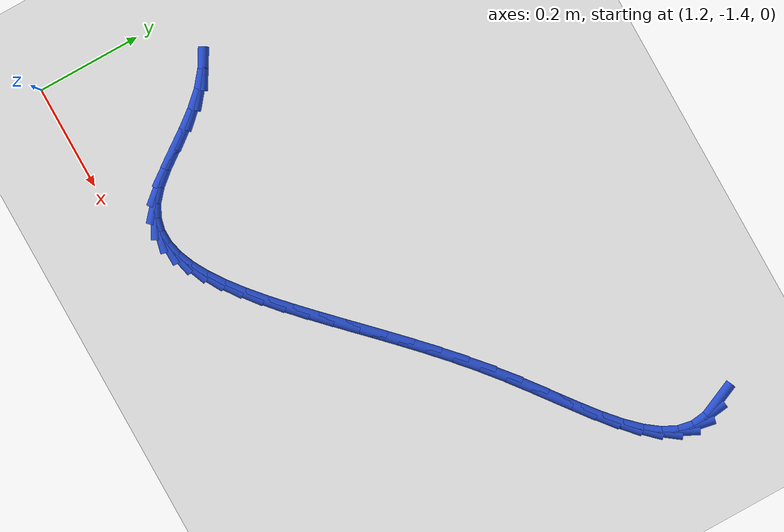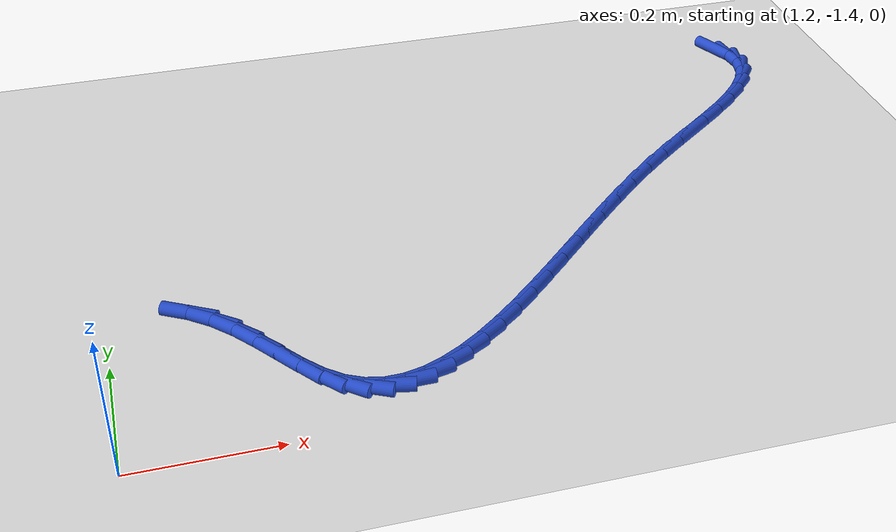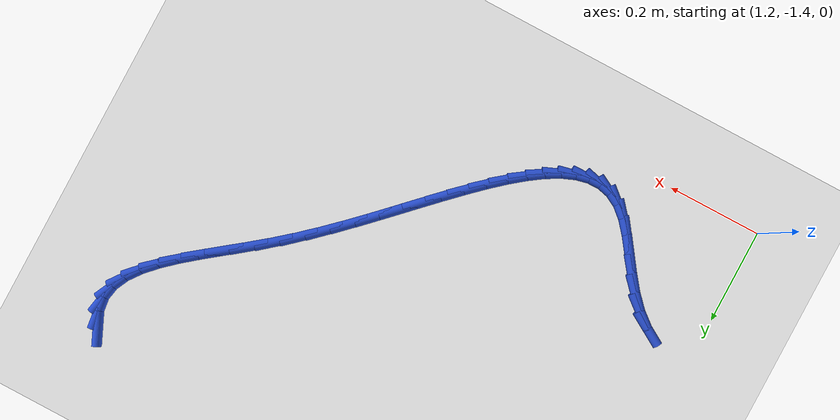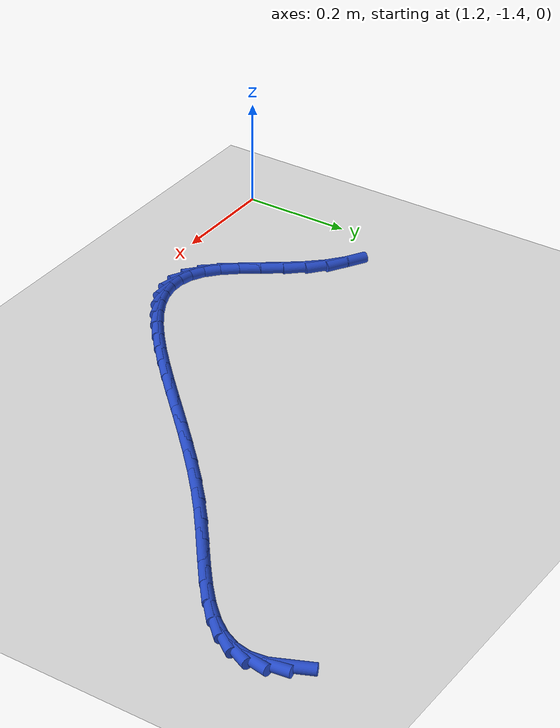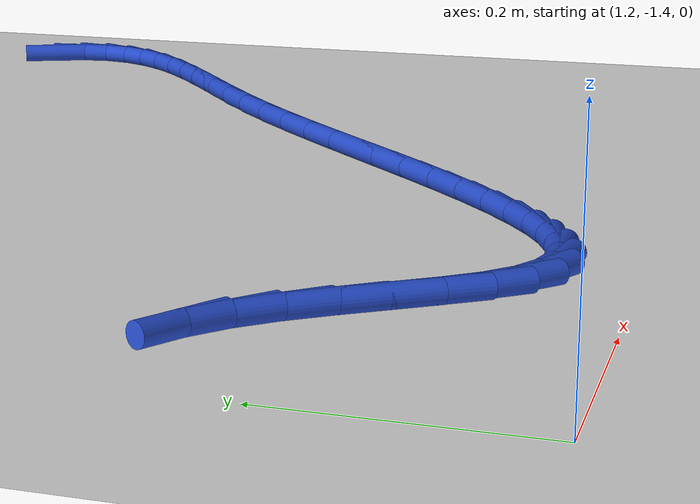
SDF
<sdf version="1.6">
 <world name="default">
  <model name="ground_plane">
   <static>1</static>
   <link name="link">
    <collision name="collision">
     <geometry><plane><normal>0 0 1</normal><size>100 100</size></plane></geometry>
     <surface><friction><ode><mu>100</mu><mu2>50</mu2></ode></friction></surface>
    </collision>
    <visual name="visual">
     <cast_shadows>0</cast_shadows>
     <geometry><plane><normal>0 0 1</normal><size>100 100</size></plane></geometry>
     <material>
      <script><uri>file://media/materials/scripts/gazebo.material</uri><name>Gazebo/WhiteGlow</name></script>
     </material>
    </visual>
   </link>
  </model>
  <model name="line">
   <link name="link_131">
    <pose>2.2953136113420305 -0.5986499298383368 0.01 0 1.57 -1.150808809760439</pose>
    <collision name="collision">
     <geometry><cylinder><radius>0.01</radius><length>0.08</length></cylinder></geometry>
    </collision>
    <visual name="visual">
     <material>
      <script><name>Gazebo/Blue</name><uri>file://media/materials/scripts/gazebo.material</uri></script>
     </material>
     <geometry><cylinder><radius>0.01</radius><length>0.08</length></cylinder></geometry>
    </visual>
   </link>
   <link name="link_132">
    <pose>2.309005720112622 -0.6293113933739817 0.01 0 1.57 -1.4461810255342478</pose>
    <collision name="collision">
     <geometry><cylinder><radius>0.01</radius><length>0.08</length></cylinder></geometry>
    </collision>
    <visual name="visual">
     <material>
      <script><name>Gazebo/Blue</name><uri>file://media/materials/scripts/gazebo.material</uri></script>
     </material>
     <geometry><cylinder><radius>0.01</radius><length>0.08</length></cylinder></geometry>
    </visual>
   </link>
   <link name="link_133">
    <pose>2.312705144816214 -0.6588443270488877 0.01 0 1.57 1.3808563776938212</pose>
    <collision name="collision">
     <geometry><cylinder><radius>0.01</radius><length>0.08</length></cylinder></geometry>
    </collision>
    <visual name="visual">
     <material>
      <script><name>Gazebo/Blue</name><uri>file://media/materials/scripts/gazebo.material</uri></script>
     </material>
     <geometry><cylinder><radius>0.01</radius><length>0.08</length></cylinder></geometry>
    </visual>
   </link>
   <link name="link_134">
    <pose>2.307193473479112 -0.687512490512152 0.01 0 1.57 1.118571027401375</pose>
    <collision name="collision">
     <geometry><cylinder><radius>0.01</radius><length>0.08</length></cylinder></geometry>
    </collision>
    <visual name="visual">
     <material>
      <script><name>Gazebo/Blue</name><uri>file://media/materials/scripts/gazebo.material</uri></script>
     </material>
     <geometry><cylinder><radius>0.01</radius><length>0.08</length></cylinder></geometry>
    </visual>
   </link>
   <link name="link_135">
    <pose>2.2935498720251357 -0.7155971529610791 0.01 0 1.57 0.930538672374162</pose>
    <collision name="collision">
     <geometry><cylinder><radius>0.01</radius><length>0.08</length></cylinder></geometry>
    </collision>
    <visual name="visual">
     <material>
      <script><name>Gazebo/Blue</name><uri>file://media/materials/scripts/gazebo.material</uri></script>
     </material>
     <geometry><cylinder><radius>0.01</radius><length>0.08</length></cylinder></geometry>
    </visual>
   </link>
   <link name="link_136">
    <pose>2.272853506378106 -0.7433795835929726 0.01 0 1.57 0.8054483033406945</pose>
    <collision name="collision">
     <geometry><cylinder><radius>0.01</radius><length>0.08</length></cylinder></geometry>
    </collision>
    <visual name="visual">
     <material>
      <script><name>Gazebo/Blue</name><uri>file://media/materials/scripts/gazebo.material</uri></script>
     </material>
     <geometry><cylinder><radius>0.01</radius><length>0.08</length></cylinder></geometry>
    </visual>
   </link>
   <link name="link_137">
    <pose>2.2461835424618384 -0.771141051605137 0.01 0 1.57 0.7260143104199966</pose>
    <collision name="collision">
     <geometry><cylinder><radius>0.01</radius><length>0.08</length></cylinder></geometry>
    </collision>
    <visual name="visual">
     <material>
      <script><name>Gazebo/Blue</name><uri>file://media/materials/scripts/gazebo.material</uri></script>
     </material>
     <geometry><cylinder><radius>0.01</radius><length>0.08</length></cylinder></geometry>
    </visual>
   </link>
   <link name="link_138">
    <pose>2.2146191462001545 -0.7991628261948767 0.01 0 1.57 0.6791994166972509</pose>
    <collision name="collision">
     <geometry><cylinder><radius>0.01</radius><length>0.08</length></cylinder></geometry>
    </collision>
    <visual name="visual">
     <material>
      <script><name>Gazebo/Blue</name><uri>file://media/materials/scripts/gazebo.material</uri></script>
     </material>
     <geometry><cylinder><radius>0.01</radius><length>0.08</length></cylinder></geometry>
    </visual>
   </link>
   <link name="link_139">
    <pose>2.179239483516872 -0.8277261765594969 0.01 0 1.57 0.6567887899550551</pose>
    <collision name="collision">
     <geometry><cylinder><radius>0.01</radius><length>0.08</length></cylinder></geometry>
    </collision>
    <visual name="visual">
     <material>
      <script><name>Gazebo/Blue</name><uri>file://media/materials/scripts/gazebo.material</uri></script>
     </material>
     <geometry><cylinder><radius>0.01</radius><length>0.08</length></cylinder></geometry>
    </visual>
   </link>
   <link name="link_140">
    <pose>2.1411237203358104 -0.8571123718963 0.01 0 1.57 0.6540495945297059</pose>
    <collision name="collision">
     <geometry><cylinder><radius>0.01</radius><length>0.08</length></cylinder></geometry>
    </collision>
    <visual name="visual">
     <material>
      <script><name>Gazebo/Blue</name><uri>file://media/materials/scripts/gazebo.material</uri></script>
     </material>
     <geometry><cylinder><radius>0.01</radius><length>0.08</length></cylinder></geometry>
    </visual>
   </link>
   <link name="link_141">
    <pose>2.1013510225807894 -0.8876026814025912 0.01 0 1.57 0.668595628871145</pose>
    <collision name="collision">
     <geometry><cylinder><radius>0.01</radius><length>0.08</length></cylinder></geometry>
    </collision>
    <visual name="visual">
     <material>
      <script><name>Gazebo/Blue</name><uri>file://media/materials/scripts/gazebo.material</uri></script>
     </material>
     <geometry><cylinder><radius>0.01</radius><length>0.08</length></cylinder></geometry>
    </visual>
   </link>
   <link name="link_142">
    <pose>2.0610005561756277 -0.9194783742756749 0.01 0 1.57 0.6984975180088993</pose>
    <collision name="collision">
     <geometry><cylinder><radius>0.01</radius><length>0.08</length></cylinder></geometry>
    </collision>
    <visual name="visual">
     <material>
      <script><name>Gazebo/Blue</name><uri>file://media/materials/scripts/gazebo.material</uri></script>
     </material>
     <geometry><cylinder><radius>0.01</radius><length>0.08</length></cylinder></geometry>
    </visual>
   </link>
   <link name="link_143">
    <pose>2.0211009118939756 -0.9529830315462171 0.01 0 1.57 0.7299010594356101</pose>
    <collision name="collision">
     <geometry><cylinder><radius>0.01</radius><length>0.08</length></cylinder></geometry>
    </collision>
    <visual name="visual">
     <material>
      <script><name>Gazebo/Blue</name><uri>file://media/materials/scripts/gazebo.material</uri></script>
     </material>
     <geometry><cylinder><radius>0.01</radius><length>0.08</length></cylinder></geometry>
    </visual>
   </link>
   <link name="link_144">
    <pose>1.9820702222608026 -0.9879053260117543 0.01 0 1.57 0.7540268278001934</pose>
    <collision name="collision">
     <geometry><cylinder><radius>0.01</radius><length>0.08</length></cylinder></geometry>
    </collision>
    <visual name="visual">
     <material>
      <script><name>Gazebo/Blue</name><uri>file://media/materials/scripts/gazebo.material</uri></script>
     </material>
     <geometry><cylinder><radius>0.01</radius><length>0.08</length></cylinder></geometry>
    </visual>
   </link>
   <link name="link_145">
    <pose>1.94392181071948 -1.0237322702261327 0.01 0 1.57 0.7711508380154483</pose>
    <collision name="collision">
     <geometry><cylinder><radius>0.01</radius><length>0.08</length></cylinder></geometry>
    </collision>
    <visual name="visual">
     <material>
      <script><name>Gazebo/Blue</name><uri>file://media/materials/scripts/gazebo.material</uri></script>
     </material>
     <geometry><cylinder><radius>0.01</radius><length>0.08</length></cylinder></geometry>
    </visual>
   </link>
   <link name="link_146">
    <pose>1.9066617437052538 -1.0599454688831986 0.01 0 1.57 0.781469803100586</pose>
    <collision name="collision">
     <geometry><cylinder><radius>0.01</radius><length>0.08</length></cylinder></geometry>
    </collision>
    <visual name="visual">
     <material>
      <script><name>Gazebo/Blue</name><uri>file://media/materials/scripts/gazebo.material</uri></script>
     </material>
     <geometry><cylinder><radius>0.01</radius><length>0.08</length></cylinder></geometry>
    </visual>
   </link>
   <link name="link_147">
    <pose>1.870296087653369 -1.0960265266767983 0.01 0 1.57 0.7849093181301018</pose>
    <collision name="collision">
     <geometry><cylinder><radius>0.01</radius><length>0.08</length></cylinder></geometry>
    </collision>
    <visual name="visual">
     <material>
      <script><name>Gazebo/Blue</name><uri>file://media/materials/scripts/gazebo.material</uri></script>
     </material>
     <geometry><cylinder><radius>0.01</radius><length>0.08</length></cylinder></geometry>
    </visual>
   </link>
   <link name="link_148">
    <pose>1.8348309089990715 -1.1314570483007789 0.01 0 1.57 0.7810819492501103</pose>
    <collision name="collision">
     <geometry><cylinder><radius>0.01</radius><length>0.08</length></cylinder></geometry>
    </collision>
    <visual name="visual">
     <material>
      <script><name>Gazebo/Blue</name><uri>file://media/materials/scripts/gazebo.material</uri></script>
     </material>
     <geometry><cylinder><radius>0.01</radius><length>0.08</length></cylinder></geometry>
    </visual>
   </link>
   <link name="link_149">
    <pose>1.8002722741776083 -1.1657186384489846 0.01 0 1.57 0.7692147903885236</pose>
    <collision name="collision">
     <geometry><cylinder><radius>0.01</radius><length>0.08</length></cylinder></geometry>
    </collision>
    <visual name="visual">
     <material>
      <script><name>Gazebo/Blue</name><uri>file://media/materials/scripts/gazebo.material</uri></script>
     </material>
     <geometry><cylinder><radius>0.01</radius><length>0.08</length></cylinder></geometry>
    </visual>
   </link>
   <link name="link_150">
    <pose>1.7666262496242249 -1.1982929018152624 0.01 0 1.57 0.7480310918407382</pose>
    <collision name="collision">
     <geometry><cylinder><radius>0.01</radius><length>0.08</length></cylinder></geometry>
    </collision>
    <visual name="visual">
     <material>
      <script><name>Gazebo/Blue</name><uri>file://media/materials/scripts/gazebo.material</uri></script>
     </material>
     <geometry><cylinder><radius>0.01</radius><length>0.08</length></cylinder></geometry>
    </visual>
   </link>
   <link name="link_151">
    <pose>1.7338989017741668 -1.2286614430934588 0.01 0 1.57 0.715564241994485</pose>
    <collision name="collision">
     <geometry><cylinder><radius>0.01</radius><length>0.08</length></cylinder></geometry>
    </collision>
    <visual name="visual">
     <material>
      <script><name>Gazebo/Blue</name><uri>file://media/materials/scripts/gazebo.material</uri></script>
     </material>
     <geometry><cylinder><radius>0.01</radius><length>0.08</length></cylinder></geometry>
    </visual>
   </link>
   <link name="link_152">
    <pose>1.7020962970626796 -1.2563058669774207 0.01 0 1.57 0.6688766428501013</pose>
    <collision name="collision">
     <geometry><cylinder><radius>0.01</radius><length>0.08</length></cylinder></geometry>
    </collision>
    <visual name="visual">
     <material>
      <script><name>Gazebo/Blue</name><uri>file://media/materials/scripts/gazebo.material</uri></script>
     </material>
     <geometry><cylinder><radius>0.01</radius><length>0.08</length></cylinder></geometry>
    </visual>
   </link>
   <link name="link_153">
    <pose>1.6712245019250098 -1.2807077781609923 0.01 0 1.57 0.6036640124149387</pose>
    <collision name="collision">
     <geometry><cylinder><radius>0.01</radius><length>0.08</length></cylinder></geometry>
    </collision>
    <visual name="visual">
     <material>
      <script><name>Gazebo/Blue</name><uri>file://media/materials/scripts/gazebo.material</uri></script>
     </material>
     <geometry><cylinder><radius>0.01</radius><length>0.08</length></cylinder></geometry>
    </visual>
   </link>
   <link name="link_154">
    <pose>1.6412895827964034 -1.301348781338021 0.01 0 1.57 0.5137957264527266</pose>
    <collision name="collision">
     <geometry><cylinder><radius>0.01</radius><length>0.08</length></cylinder></geometry>
    </collision>
    <visual name="visual">
     <material>
      <script><name>Gazebo/Blue</name><uri>file://media/materials/scripts/gazebo.material</uri></script>
     </material>
     <geometry><cylinder><radius>0.01</radius><length>0.08</length></cylinder></geometry>
    </visual>
   </link>
   <link name="link_155">
    <pose>1.6122976061121055 -1.3177104812023526 0.01 0 1.57 0.3911221192016852</pose>
    <collision name="collision">
     <geometry><cylinder><radius>0.01</radius><length>0.08</length></cylinder></geometry>
    </collision>
    <visual name="visual">
     <material>
      <script><name>Gazebo/Blue</name><uri>file://media/materials/scripts/gazebo.material</uri></script>
     </material>
     <geometry><cylinder><radius>0.01</radius><length>0.08</length></cylinder></geometry>
    </visual>
   </link>
   <link name="link_156">
    <pose>1.5842546383073621 -1.3292744824478337 0.01 0 1.57 0.2266886193913934</pose>
    <collision name="collision">
     <geometry><cylinder><radius>0.01</radius><length>0.08</length></cylinder></geometry>
    </collision>
    <visual name="visual">
     <material>
      <script><name>Gazebo/Blue</name><uri>file://media/materials/scripts/gazebo.material</uri></script>
     </material>
     <geometry><cylinder><radius>0.01</radius><length>0.08</length></cylinder></geometry>
    </visual>
   </link>
   <link name="link_157">
    <pose>1.5571667458174199 -1.3355223897683102 0.01 0 1.57 0.015822234998372976</pose>
    <collision name="collision">
     <geometry><cylinder><radius>0.01</radius><length>0.08</length></cylinder></geometry>
    </collision>
    <visual name="visual">
     <material>
      <script><name>Gazebo/Blue</name><uri>file://media/materials/scripts/gazebo.material</uri></script>
     </material>
     <geometry><cylinder><radius>0.01</radius><length>0.08</length></cylinder></geometry>
    </visual>
   </link>
   <link name="link_158">
    <pose>1.5310399950775238 -1.335935807857628 0.01 0 1.57 -0.231827724523025</pose>
    <collision name="collision">
     <geometry><cylinder><radius>0.01</radius><length>0.08</length></cylinder></geometry>
    </collision>
    <visual name="visual">
     <material>
      <script><name>Gazebo/Blue</name><uri>file://media/materials/scripts/gazebo.material</uri></script>
     </material>
     <geometry><cylinder><radius>0.01</radius><length>0.08</length></cylinder></geometry>
    </visual>
   </link>
   <link name="link_159">
    <pose>1.50588045252292 -1.3299963414096332 0.01 0 1.57 -0.48710109878386226</pose>
    <collision name="collision">
     <geometry><cylinder><radius>0.01</radius><length>0.08</length></cylinder></geometry>
    </collision>
    <visual name="visual">
     <material>
      <script><name>Gazebo/Blue</name><uri>file://media/materials/scripts/gazebo.material</uri></script>
     </material>
     <geometry><cylinder><radius>0.01</radius><length>0.08</length></cylinder></geometry>
    </visual>
   </link>
   <link name="link_160">
    <pose>1.4816941845888538 -1.3171855951181721 0.01 0 1.57 -0.7149997001934387</pose>
    <collision name="collision">
     <geometry><cylinder><radius>0.01</radius><length>0.08</length></cylinder></geometry>
    </collision>
    <visual name="visual">
     <material>
      <script><name>Gazebo/Blue</name><uri>file://media/materials/scripts/gazebo.material</uri></script>
     </material>
     <geometry><cylinder><radius>0.01</radius><length>0.08</length></cylinder></geometry>
    </visual>
   </link>
   <link name="link_161">
    <pose>1.458477454128134 -1.297027444044953 0.01 0 1.57 -0.8688690177983529</pose>
    <collision name="collision">
     <geometry><cylinder><radius>0.01</radius><length>0.08</length></cylinder></geometry>
    </collision>
    <visual name="visual">
     <material>
      <script><name>Gazebo/Blue</name><uri>file://media/materials/scripts/gazebo.material</uri></script>
     </material>
     <geometry><cylinder><radius>0.01</radius><length>0.08</length></cylinder></geometry>
    </visual>
   </link>
   <link name="link_162">
    <pose>1.435923021974668 -1.2703543810010063 0.01 0 1.57 -0.9391617502151065</pose>
    <collision name="collision">
     <geometry><cylinder><radius>0.01</radius><length>0.08</length></cylinder></geometry>
    </collision>
    <visual name="visual">
     <material>
      <script><name>Gazebo/Blue</name><uri>file://media/materials/scripts/gazebo.material</uri></script>
     </material>
     <geometry><cylinder><radius>0.01</radius><length>0.08</length></cylinder></geometry>
    </visual>
   </link>
   <link name="link_163">
    <pose>1.4133691978157292 -1.239527195259572 0.01 0 1.57 -0.9506197299165366</pose>
    <collision name="collision">
     <geometry><cylinder><radius>0.01</radius><length>0.08</length></cylinder></geometry>
    </collision>
    <visual name="visual">
     <material>
      <script><name>Gazebo/Blue</name><uri>file://media/materials/scripts/gazebo.material</uri></script>
     </material>
     <geometry><cylinder><radius>0.01</radius><length>0.08</length></cylinder></geometry>
    </visual>
   </link>
   <link name="link_164">
    <pose>1.3901342209455547 -1.206993214142815 0.01 0 1.57 -0.9123127516399746</pose>
    <collision name="collision">
     <geometry><cylinder><radius>0.01</radius><length>0.08</length></cylinder></geometry>
    </collision>
    <visual name="visual">
     <material>
      <script><name>Gazebo/Blue</name><uri>file://media/materials/scripts/gazebo.material</uri></script>
     </material>
     <geometry><cylinder><radius>0.01</radius><length>0.08</length></cylinder></geometry>
    </visual>
   </link>
   <link name="link_165">
    <pose>1.3655363306583816 -1.1751997649729 0.01 0 1.57 -0.8209738763102246</pose>
    <collision name="collision">
     <geometry><cylinder><radius>0.01</radius><length>0.08</length></cylinder></geometry>
    </collision>
    <visual name="visual">
     <material>
      <script><name>Gazebo/Blue</name><uri>file://media/materials/scripts/gazebo.material</uri></script>
     </material>
     <geometry><cylinder><radius>0.01</radius><length>0.08</length></cylinder></geometry>
    </visual>
   </link>
   <link name="link_166">
    <pose>1.3388946091823204 -1.1465916619609977 0.01 0 1.57 -0.6826735222264309</pose>
    <collision name="collision">
     <geometry><cylinder><radius>0.01</radius><length>0.08</length></cylinder></geometry>
    </collision>
    <visual name="visual">
     <material>
      <script><name>Gazebo/Blue</name><uri>file://media/materials/scripts/gazebo.material</uri></script>
     </material>
     <geometry><cylinder><radius>0.01</radius><length>0.08</length></cylinder></geometry>
    </visual>
   </link>
   <link name="link_167">
    <pose>1.3097652524465395 -1.1229067919187783 0.01 0 1.57 -0.5356610844224378</pose>
    <collision name="collision">
     <geometry><cylinder><radius>0.01</radius><length>0.08</length></cylinder></geometry>
    </collision>
    <visual name="visual">
     <material>
      <script><name>Gazebo/Blue</name><uri>file://media/materials/scripts/gazebo.material</uri></script>
     </material>
     <geometry><cylinder><radius>0.01</radius><length>0.08</length></cylinder></geometry>
    </visual>
   </link>
  </model>
 </world>
</sdf>
